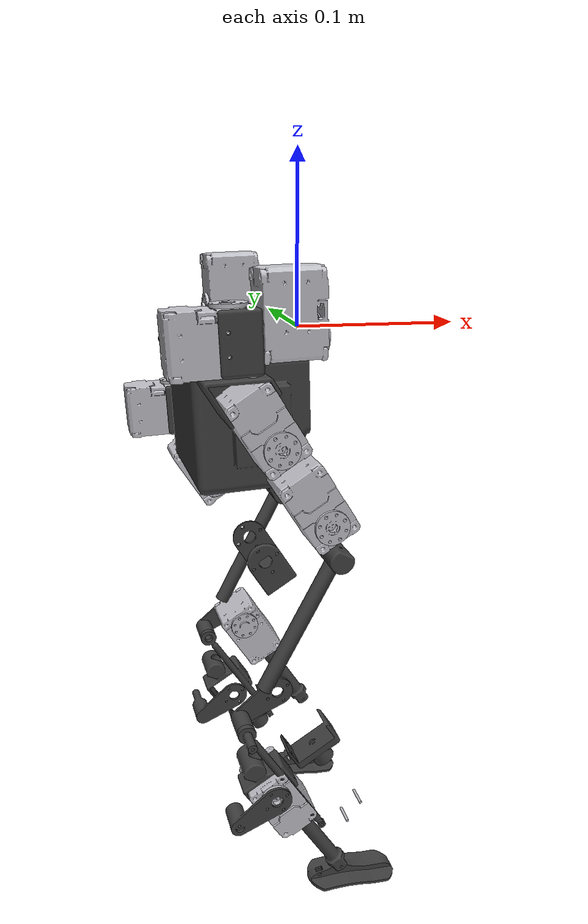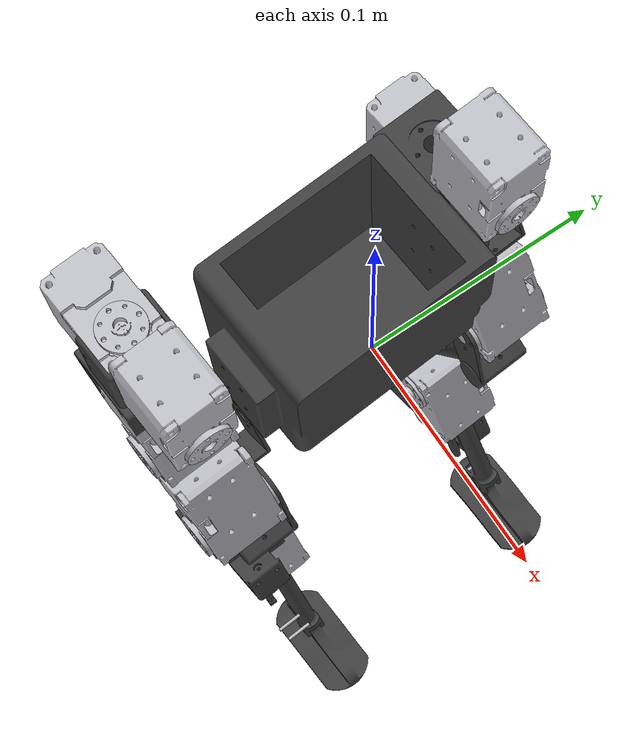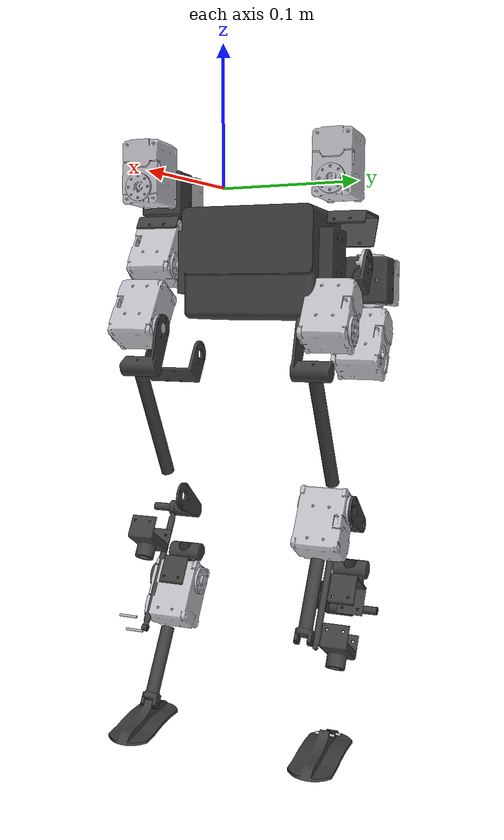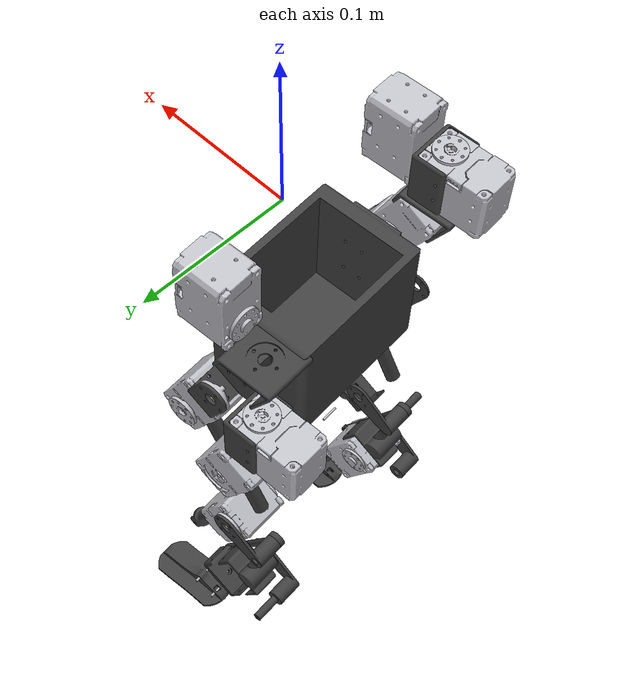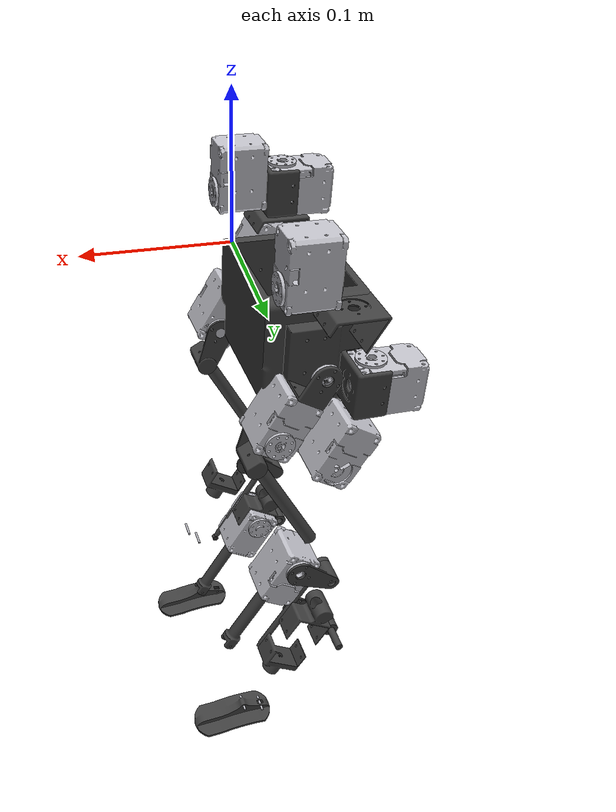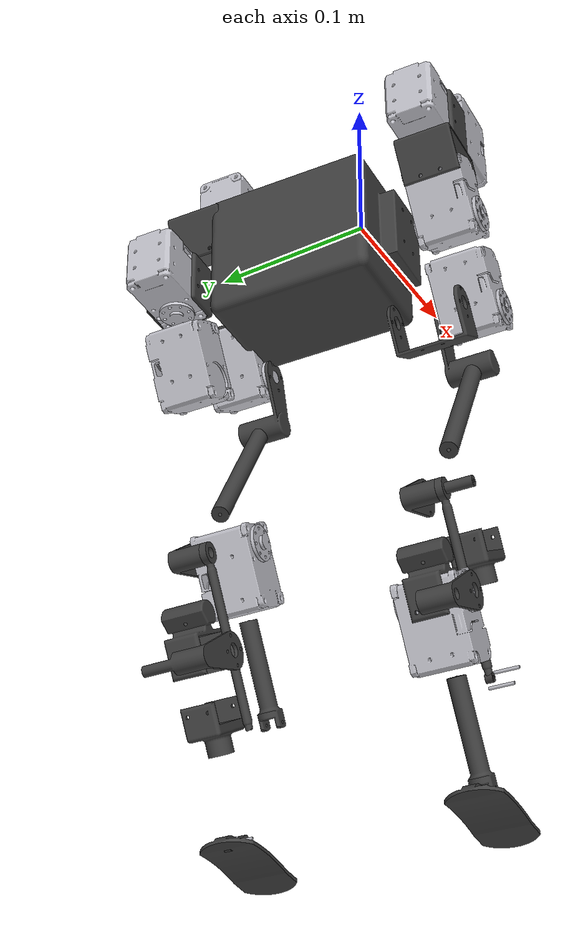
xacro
<?xml version="1.0" ?>
<robot name="mikkelsen2d" xmlns:xacro="http://www.ros.org/wiki/xacro">

<xacro:include filename="$(find mikkelsen2d_description)/urdf/materials.xacro" />
<xacro:include filename="$(find mikkelsen2d_description)/urdf/mikkelsen2d.trans" />
<xacro:include filename="$(find mikkelsen2d_description)/urdf/mikkelsen2d.gazebo" />

<link name="world">
  <inertial>
    <mass value="0"/>
    <origin rpy="0 0 0" xyz="0 0 0"/>
    <inertia ixx="0" ixy="0" ixz="0" iyy="0" iyz="0" izz="0"/>
  </inertial>
</link>
<link name="z_prismatic">
  <inertial>
    <mass value="75"/>
    <inertia ixx="0.2125" ixy="-0.005" ixz="0.0225" iyy="0.205" iyz="0.045" izz="0.0125"/>
    <origin rpy="0 0 0" xyz="0 0 0"/>
  </inertial>
</link>
<joint name="z_to_world" type="prismatic">
  <parent link="world"/>
  <child link="z_prismatic"/>
  <axis xyz="0 0 1"/>
  <limit effort="0.0" lower="1" upper="-1" velocity="1000.0"/>
  <origin rpy="0 0 0" xyz="0 0 0"/>
</joint>
<link name="x_prismatic">
  <inertial>
    <mass value="0.001"/>
    <inertia ixx="0.2125" ixy="-0.005" ixz="0.0225" iyy="0.205" iyz="0.045" izz="0.0125"/>
    <origin rpy="0 0 0" xyz="0 0 0"/>
  </inertial>
</link>
<joint name="x_to_z" type="prismatic">
  <parent link="z_prismatic"/>
  <child link="x_prismatic"/>
  <axis xyz="1 0 0"/>
  <limit effort="0.0" lower="1" upper="-1" velocity="1000.0"/>
  <origin rpy="0 0 0" xyz="0 0 0"/>
</joint>
<joint name="base_to_x" type="continuous">
  <parent link="x_prismatic"/>
  <child link="base_link"/>
  <axis xyz="0 0 1"/>
  <origin rpy="0 0 0" xyz="0 0 0"/>
</joint>

<link name="base_link">
  <inertial>
    <origin xyz="-0.037679135816683924 0.012666740518570965 -0.058008954907279954" rpy="0 0 0"/>
    <mass value="0.42566063723793834"/>
    <inertia ixx="0.000885" iyy="0.000452" izz="0.000847" ixy="3.1e-05" iyz="1e-06" ixz="-7e-06"/>
  </inertial>
  <visual>
    <origin xyz="0 0 0" rpy="0 0 0"/>
    <geometry>
      <mesh filename="package://mikkelsen2d_description/meshes/base_link.stl" scale="0.001 0.001 0.001"/>
    </geometry>
    <material name="pa_11_nylon_hp_1130_eos_p_396_3d_"/>
  </visual>
  <collision>
    <origin xyz="0 0 0" rpy="0 0 0"/>
    <geometry>
      <mesh filename="package://mikkelsen2d_description/meshes/base_link.stl" scale="0.001 0.001 0.001"/>
    </geometry>
  </collision>
</link>

<link name="R_hip_roll_xl_2">
  <inertial>
    <origin xyz="-0.004986268827101341 -0.014720443125513842 -0.015885149307033275" rpy="0 0 0"/>
    <mass value="0.040973661549071165"/>
    <inertia ixx="1e-05" iyy="1.1e-05" izz="6e-06" ixy="-0.0" iyz="-0.0" ixz="0.0"/>
  </inertial>
  <visual>
    <origin xyz="0.023805 0.046388 0.034586" rpy="0 0 0"/>
    <geometry>
      <mesh filename="package://mikkelsen2d_description/meshes/R_hip_roll_xl_2.stl" scale="0.001 0.001 0.001"/>
    </geometry>
    <material name=""/>
  </visual>
  <collision>
    <origin xyz="0.023805 0.046388 0.034586" rpy="0 0 0"/>
    <geometry>
      <mesh filename="package://mikkelsen2d_description/meshes/R_hip_roll_xl_2.stl" scale="0.001 0.001 0.001"/>
    </geometry>
  </collision>
</link>

<link name="R_hip_roll_2">
  <inertial>
    <origin xyz="0.016632013644877517 0.0012074494935598173 0.0006988114411143054" rpy="0 0 0"/>
    <mass value="0.001436423594975712"/>
    <inertia ixx="0.0" iyy="0.0" izz="0.0" ixy="-0.0" iyz="-0.0" ixz="-0.0"/>
  </inertial>
  <visual>
    <origin xyz="0.044871 0.062309 0.0632" rpy="0 0 0"/>
    <geometry>
      <mesh filename="package://mikkelsen2d_description/meshes/R_hip_roll_2.stl" scale="0.001 0.001 0.001"/>
    </geometry>
    <material name=""/>
  </visual>
  <collision>
    <origin xyz="0.044871 0.062309 0.0632" rpy="0 0 0"/>
    <geometry>
      <mesh filename="package://mikkelsen2d_description/meshes/R_hip_roll_2.stl" scale="0.001 0.001 0.001"/>
    </geometry>
  </collision>
</link>

<link name="hip_roll_bracket_1">
  <inertial>
    <origin xyz="-0.005977579788513737 -0.0004317805669656269 -0.00017873596901929467" rpy="0 0 0"/>
    <mass value="0.005303897131480488"/>
    <inertia ixx="1e-06" iyy="1e-06" izz="1e-06" ixy="0.0" iyz="0.0" ixz="0.0"/>
  </inertial>
  <visual>
    <origin xyz="0.046865 0.062453 0.063259" rpy="0 0 0"/>
    <geometry>
      <mesh filename="package://mikkelsen2d_description/meshes/hip_roll_bracket_1.stl" scale="0.001 0.001 0.001"/>
    </geometry>
    <material name="pa_11_nylon_hp_1130_eos_p_396_3d_"/>
  </visual>
  <collision>
    <origin xyz="0.046865 0.062453 0.063259" rpy="0 0 0"/>
    <geometry>
      <mesh filename="package://mikkelsen2d_description/meshes/hip_roll_bracket_1.stl" scale="0.001 0.001 0.001"/>
    </geometry>
  </collision>
</link>

<link name="R_hip_yaw_xl_2">
  <inertial>
    <origin xyz="-0.006998679111861819 -0.014828044606016055 -0.006688075872869702" rpy="0 0 0"/>
    <mass value="0.040973661549071165"/>
    <inertia ixx="6e-06" iyy="1.1e-05" izz="1e-05" ixy="-0.0" iyz="-0.0" ixz="-0.0"/>
  </inertial>
  <visual>
    <origin xyz="0.065267 0.049471 0.057833" rpy="0 0 0"/>
    <geometry>
      <mesh filename="package://mikkelsen2d_description/meshes/R_hip_yaw_xl_2.stl" scale="0.001 0.001 0.001"/>
    </geometry>
    <material name=""/>
  </visual>
  <collision>
    <origin xyz="0.065267 0.049471 0.057833" rpy="0 0 0"/>
    <geometry>
      <mesh filename="package://mikkelsen2d_description/meshes/R_hip_yaw_xl_2.stl" scale="0.001 0.001 0.001"/>
    </geometry>
  </collision>
</link>

<link name="R_hip_yaw_2">
  <inertial>
    <origin xyz="-0.0007020290665685561 2.278650526520154e-05 0.01667620487029814" rpy="0 0 0"/>
    <mass value="0.001436423594975712"/>
    <inertia ixx="0.0" iyy="0.0" izz="0.0" ixy="0.0" iyz="-0.0" ixz="0.0"/>
  </inertial>
  <visual>
    <origin xyz="0.059566 0.063439 0.080646" rpy="0 0 0"/>
    <geometry>
      <mesh filename="package://mikkelsen2d_description/meshes/R_hip_yaw_2.stl" scale="0.001 0.001 0.001"/>
    </geometry>
    <material name=""/>
  </visual>
  <collision>
    <origin xyz="0.059566 0.063439 0.080646" rpy="0 0 0"/>
    <geometry>
      <mesh filename="package://mikkelsen2d_description/meshes/R_hip_yaw_2.stl" scale="0.001 0.001 0.001"/>
    </geometry>
  </collision>
</link>

<link name="hip_yaw_bracket_1">
  <inertial>
    <origin xyz="-0.001846672263714419 -0.00015526908116847427 -0.005510024391643234" rpy="0 0 0"/>
    <mass value="0.0070036931272659"/>
    <inertia ixx="1e-06" iyy="1e-06" izz="2e-06" ixy="-0.0" iyz="-0.0" ixz="-0.0"/>
  </inertial>
  <visual>
    <origin xyz="0.059506 0.063443 0.082645" rpy="0 0 0"/>
    <geometry>
      <mesh filename="package://mikkelsen2d_description/meshes/hip_yaw_bracket_1.stl" scale="0.001 0.001 0.001"/>
    </geometry>
    <material name="pa_11_nylon_hp_1130_eos_p_396_3d_"/>
  </visual>
  <collision>
    <origin xyz="0.059506 0.063443 0.082645" rpy="0 0 0"/>
    <geometry>
      <mesh filename="package://mikkelsen2d_description/meshes/hip_yaw_bracket_1.stl" scale="0.001 0.001 0.001"/>
    </geometry>
  </collision>
</link>

<link name="R_hip_pitch_xl_2">
  <inertial>
    <origin xyz="-0.0034402792651398242 -0.005843576841470306 -0.02087676372452038" rpy="0 0 0"/>
    <mass value="0.040973661549071165"/>
    <inertia ixx="1e-05" iyy="1e-05" izz="8e-06" ixy="-0.0" iyz="0.0" ixz="2e-06"/>
  </inertial>
  <visual>
    <origin xyz="0.040306 0.056066 0.088365" rpy="0 0 0"/>
    <geometry>
      <mesh filename="package://mikkelsen2d_description/meshes/R_hip_pitch_xl_2.stl" scale="0.001 0.001 0.001"/>
    </geometry>
    <material name=""/>
  </visual>
  <collision>
    <origin xyz="0.040306 0.056066 0.088365" rpy="0 0 0"/>
    <geometry>
      <mesh filename="package://mikkelsen2d_description/meshes/R_hip_pitch_xl_2.stl" scale="0.001 0.001 0.001"/>
    </geometry>
  </collision>
</link>

<link name="R_hip_pitch_2">
  <inertial>
    <origin xyz="0.0010986594270186306 -0.016652648300792397 0.0002431266431453527" rpy="0 0 0"/>
    <mass value="0.001436423594975712"/>
    <inertia ixx="0.0" iyy="0.0" izz="0.0" ixy="0.0" iyz="0.0" ixz="-0.0"/>
  </inertial>
  <visual>
    <origin xyz="0.038503 0.045035 0.11972" rpy="0 0 0"/>
    <geometry>
      <mesh filename="package://mikkelsen2d_description/meshes/R_hip_pitch_2.stl" scale="0.001 0.001 0.001"/>
    </geometry>
    <material name=""/>
  </visual>
  <collision>
    <origin xyz="0.038503 0.045035 0.11972" rpy="0 0 0"/>
    <geometry>
      <mesh filename="package://mikkelsen2d_description/meshes/R_hip_pitch_2.stl" scale="0.001 0.001 0.001"/>
    </geometry>
  </collision>
</link>

<link name="hip_pitch_bracket_1">
  <inertial>
    <origin xyz="0.0075391568599490685 -0.018546209284858436 -0.009937387556057525" rpy="0 0 0"/>
    <mass value="0.005694190208798132"/>
    <inertia ixx="2e-06" iyy="1e-06" izz="2e-06" ixy="0.0" iyz="0.0" ixz="0.0"/>
  </inertial>
  <visual>
    <origin xyz="0.038647 0.04304 0.119728" rpy="0 0 0"/>
    <geometry>
      <mesh filename="package://mikkelsen2d_description/meshes/hip_pitch_bracket_1.stl" scale="0.001 0.001 0.001"/>
    </geometry>
    <material name="pa_11_nylon_hp_1130_eos_p_396_3d_"/>
  </visual>
  <collision>
    <origin xyz="0.038647 0.04304 0.119728" rpy="0 0 0"/>
    <geometry>
      <mesh filename="package://mikkelsen2d_description/meshes/hip_pitch_bracket_1.stl" scale="0.001 0.001 0.001"/>
    </geometry>
  </collision>
</link>

<link name="R_knee_xl_2">
  <inertial>
    <origin xyz="0.005665122216174493 -0.00519891645315862 -0.02376072216402675" rpy="0 0 0"/>
    <mass value="0.040973661549071165"/>
    <inertia ixx="1e-05" iyy="1e-05" izz="8e-06" ixy="-0.0" iyz="0.0" ixz="2e-06"/>
  </inertial>
  <visual>
    <origin xyz="0.020568 0.054821 0.132273" rpy="0 0 0"/>
    <geometry>
      <mesh filename="package://mikkelsen2d_description/meshes/R_knee_xl_2.stl" scale="0.001 0.001 0.001"/>
    </geometry>
    <material name=""/>
  </visual>
  <collision>
    <origin xyz="0.020568 0.054821 0.132273" rpy="0 0 0"/>
    <geometry>
      <mesh filename="package://mikkelsen2d_description/meshes/R_knee_xl_2.stl" scale="0.001 0.001 0.001"/>
    </geometry>
  </collision>
</link>

<link name="R_knee_2">
  <inertial>
    <origin xyz="0.0010990609083328055 -0.016652987912480627 0.0002431682036394267" rpy="0 0 0"/>
    <mass value="0.001436423594975712"/>
    <inertia ixx="0.0" iyy="0.0" izz="0.0" ixy="0.0" iyz="0.0" ixz="-0.0"/>
  </inertial>
  <visual>
    <origin xyz="0.00966 0.043145 0.166512" rpy="0 0 0"/>
    <geometry>
      <mesh filename="package://mikkelsen2d_description/meshes/R_knee_2.stl" scale="0.001 0.001 0.001"/>
    </geometry>
    <material name=""/>
  </visual>
  <collision>
    <origin xyz="0.00966 0.043145 0.166512" rpy="0 0 0"/>
    <geometry>
      <mesh filename="package://mikkelsen2d_description/meshes/R_knee_2.stl" scale="0.001 0.001 0.001"/>
    </geometry>
  </collision>
</link>

<link name="knee_r_brecket_1">
  <inertial>
    <origin xyz="0.009880315866068638 -0.007544733859495598 -0.0235916808233316" rpy="0 0 0"/>
    <mass value="0.00786109169007575"/>
    <inertia ixx="1e-06" iyy="1e-06" izz="1e-06" ixy="0.0" iyz="-0.0" ixz="0.0"/>
  </inertial>
  <visual>
    <origin xyz="0.009804 0.04115 0.16652" rpy="0 0 0"/>
    <geometry>
      <mesh filename="package://mikkelsen2d_description/meshes/knee_r_brecket_1.stl" scale="0.001 0.001 0.001"/>
    </geometry>
    <material name="pa_11_nylon_hp_1130_eos_p_396_3d_"/>
  </visual>
  <collision>
    <origin xyz="0.009804 0.04115 0.16652" rpy="0 0 0"/>
    <geometry>
      <mesh filename="package://mikkelsen2d_description/meshes/knee_r_brecket_1.stl" scale="0.001 0.001 0.001"/>
    </geometry>
  </collision>
</link>

<link name="leg_upper_1">
  <inertial>
    <origin xyz="-0.0236265091226358 -0.0018811073277059803 -0.044025157686495536" rpy="0 0 0"/>
    <mass value="0.012719491840295135"/>
    <inertia ixx="8e-06" iyy="1.1e-05" izz="3e-06" ixy="-0.0" iyz="-0.0" ixz="-4e-06"/>
  </inertial>
  <visual>
    <origin xyz="-0.00337 0.052837 0.192104" rpy="0 0 0"/>
    <geometry>
      <mesh filename="package://mikkelsen2d_description/meshes/leg_upper_1.stl" scale="0.001 0.001 0.001"/>
    </geometry>
    <material name="pa_11_nylon_hp_1130_eos_p_396_3d_"/>
  </visual>
  <collision>
    <origin xyz="-0.00337 0.052837 0.192104" rpy="0 0 0"/>
    <geometry>
      <mesh filename="package://mikkelsen2d_description/meshes/leg_upper_1.stl" scale="0.001 0.001 0.001"/>
    </geometry>
  </collision>
</link>

<link name="lower_knee_link_2">
  <inertial>
    <origin xyz="0.0053390673542219255 0.00037288933482495373 -0.003360765157294665" rpy="0 0 0"/>
    <mass value="0.010036812614450108"/>
    <inertia ixx="1e-06" iyy="2e-06" izz="1e-06" ixy="-0.0" iyz="0.0" ixz="0.0"/>
  </inertial>
  <visual>
    <origin xyz="0.043883 0.056599 0.280155" rpy="0 0 0"/>
    <geometry>
      <mesh filename="package://mikkelsen2d_description/meshes/lower_knee_link_2.stl" scale="0.001 0.001 0.001"/>
    </geometry>
    <material name="pa_11_nylon_hp_1130_eos_p_396_3d_"/>
  </visual>
  <collision>
    <origin xyz="0.043883 0.056599 0.280155" rpy="0 0 0"/>
    <geometry>
      <mesh filename="package://mikkelsen2d_description/meshes/lower_knee_link_2.stl" scale="0.001 0.001 0.001"/>
    </geometry>
  </collision>
</link>

<link name="R_ankle_xl_2">
  <inertial>
    <origin xyz="0.0023787863497140467 -0.14124852441426808 -0.013927891020301064" rpy="0 0 0"/>
    <mass value="0.040973661549071165"/>
    <inertia ixx="1e-05" iyy="1e-05" izz="8e-06" ixy="-0.0" iyz="0.0" ixz="2e-06"/>
  </inertial>
  <visual>
    <origin xyz="0.026284 -0.086403 0.292492" rpy="0 0 0"/>
    <geometry>
      <mesh filename="package://mikkelsen2d_description/meshes/R_ankle_xl_2.stl" scale="0.001 0.001 0.001"/>
    </geometry>
    <material name=""/>
  </visual>
  <collision>
    <origin xyz="0.026284 -0.086403 0.292492" rpy="0 0 0"/>
    <geometry>
      <mesh filename="package://mikkelsen2d_description/meshes/R_ankle_xl_2.stl" scale="0.001 0.001 0.001"/>
    </geometry>
  </collision>
</link>

<link name="R_ankle_2">
  <inertial>
    <origin xyz="0.0013006383168733017 -0.016639995225795144 -0.00010822058159531966" rpy="0 0 0"/>
    <mass value="0.001436423594975712"/>
    <inertia ixx="0.0" iyy="0.0" izz="0.0" ixy="0.0" iyz="-0.0" ixz="0.0"/>
  </inertial>
  <visual>
    <origin xyz="0.03152 0.038813 0.296075" rpy="0 0 0"/>
    <geometry>
      <mesh filename="package://mikkelsen2d_description/meshes/R_ankle_2.stl" scale="0.001 0.001 0.001"/>
    </geometry>
    <material name=""/>
  </visual>
  <collision>
    <origin xyz="0.03152 0.038813 0.296075" rpy="0 0 0"/>
    <geometry>
      <mesh filename="package://mikkelsen2d_description/meshes/R_ankle_2.stl" scale="0.001 0.001 0.001"/>
    </geometry>
  </collision>
</link>

<link name="ankle_link_1_2">
  <inertial>
    <origin xyz="-0.01962001103280569 -0.009168861831198263 -0.012464641305166724" rpy="0 0 0"/>
    <mass value="0.006084906833817184"/>
    <inertia ixx="1e-06" iyy="1e-06" izz="1e-06" ixy="-0.0" iyz="-0.0" ixz="-0.0"/>
  </inertial>
  <visual>
    <origin xyz="0.031664 0.036818 0.296083" rpy="0 0 0"/>
    <geometry>
      <mesh filename="package://mikkelsen2d_description/meshes/ankle_link_1_2.stl" scale="0.001 0.001 0.001"/>
    </geometry>
    <material name="pa_11_nylon_hp_1130_eos_p_396_3d_"/>
  </visual>
  <collision>
    <origin xyz="0.031664 0.036818 0.296083" rpy="0 0 0"/>
    <geometry>
      <mesh filename="package://mikkelsen2d_description/meshes/ankle_link_1_2.stl" scale="0.001 0.001 0.001"/>
    </geometry>
  </collision>
</link>

<link name="ankle_link_2_2">
  <inertial>
    <origin xyz="-0.018515664582423236 0.0026780261680551254 -0.011305066027976263" rpy="0 0 0"/>
    <mass value="0.004445165114646534"/>
    <inertia ixx="0.0" iyy="1e-06" izz="1e-06" ixy="0.0" iyz="0.0" ixz="-0.0"/>
  </inertial>
  <visual>
    <origin xyz="0.028932 0.07472 0.29593" rpy="0 0 0"/>
    <geometry>
      <mesh filename="package://mikkelsen2d_description/meshes/ankle_link_2_2.stl" scale="0.001 0.001 0.001"/>
    </geometry>
    <material name="pa_11_nylon_hp_1130_eos_p_396_3d_"/>
  </visual>
  <collision>
    <origin xyz="0.028932 0.07472 0.29593" rpy="0 0 0"/>
    <geometry>
      <mesh filename="package://mikkelsen2d_description/meshes/ankle_link_2_2.stl" scale="0.001 0.001 0.001"/>
    </geometry>
  </collision>
</link>

<link name="R_bionic_biped_robot_ankle_bar_1">
  <inertial>
    <origin xyz="0.0372744305641953 -0.13529755106127062 -0.03135385985193945" rpy="0 0 0"/>
    <mass value="0.003337002701996774"/>
    <inertia ixx="2e-06" iyy="3e-06" izz="1e-06" ixy="-0.0" iyz="0.0" ixz="1e-06"/>
  </inertial>
  <visual>
    <origin xyz="0.065636 -0.079475 0.312328" rpy="0 0 0"/>
    <geometry>
      <mesh filename="package://mikkelsen2d_description/meshes/R_bionic_biped_robot_ankle_bar_1.stl" scale="0.001 0.001 0.001"/>
    </geometry>
    <material name="pa_11_nylon_hp_1130_eos_p_396_3d_"/>
  </visual>
  <collision>
    <origin xyz="0.065636 -0.079475 0.312328" rpy="0 0 0"/>
    <geometry>
      <mesh filename="package://mikkelsen2d_description/meshes/R_bionic_biped_robot_ankle_bar_1.stl" scale="0.001 0.001 0.001"/>
    </geometry>
  </collision>
</link>

<link name="R_ankle_bar_parts_1">
  <inertial>
    <origin xyz="0.00014366062701038056 -0.0019944275139060913 7.819823202137588e-06" rpy="0 0 0"/>
    <mass value="0.0001072728227494817"/>
    <inertia ixx="0.0" iyy="0.0" izz="0.0" ixy="-0.0" iyz="-0.0" ixz="0.0"/>
  </inertial>
  <visual>
    <origin xyz="-0.007408 0.051407 0.38553" rpy="0 0 0"/>
    <geometry>
      <mesh filename="package://mikkelsen2d_description/meshes/R_ankle_bar_parts_1.stl" scale="0.001 0.001 0.001"/>
    </geometry>
    <material name="_"/>
  </visual>
  <collision>
    <origin xyz="-0.007408 0.051407 0.38553" rpy="0 0 0"/>
    <geometry>
      <mesh filename="package://mikkelsen2d_description/meshes/R_ankle_bar_parts_1.stl" scale="0.001 0.001 0.001"/>
    </geometry>
  </collision>
</link>

<link name="lower_link_1">
  <inertial>
    <origin xyz="-0.006464663734562279 -0.006541979758505921 -0.015891229452998867" rpy="0 0 0"/>
    <mass value="0.008544769707383056"/>
    <inertia ixx="1e-06" iyy="1e-06" izz="1e-06" ixy="-0.0" iyz="-0.0" ixz="-0.0"/>
  </inertial>
  <visual>
    <origin xyz="0.003956 0.047921 0.312363" rpy="0 0 0"/>
    <geometry>
      <mesh filename="package://mikkelsen2d_description/meshes/lower_link_1.stl" scale="0.001 0.001 0.001"/>
    </geometry>
    <material name="pa_11_nylon_hp_1130_eos_p_396_3d_"/>
  </visual>
  <collision>
    <origin xyz="0.003956 0.047921 0.312363" rpy="0 0 0"/>
    <geometry>
      <mesh filename="package://mikkelsen2d_description/meshes/lower_link_1.stl" scale="0.001 0.001 0.001"/>
    </geometry>
  </collision>
</link>

<link name="leg_lower_2">
  <inertial>
    <origin xyz="0.016577983186343064 0.0010932869739602863 -0.024991954419130824" rpy="0 0 0"/>
    <mass value="0.007702697584770665"/>
    <inertia ixx="2e-06" iyy="2e-06" izz="1e-06" ixy="-0.0" iyz="0.0" ixz="1e-06"/>
  </inertial>
  <visual>
    <origin xyz="0.009717 0.054388 0.329399" rpy="0 0 0"/>
    <geometry>
      <mesh filename="package://mikkelsen2d_description/meshes/leg_lower_2.stl" scale="0.001 0.001 0.001"/>
    </geometry>
    <material name="pa_11_nylon_hp_1130_eos_p_396_3d_"/>
  </visual>
  <collision>
    <origin xyz="0.009717 0.054388 0.329399" rpy="0 0 0"/>
    <geometry>
      <mesh filename="package://mikkelsen2d_description/meshes/leg_lower_2.stl" scale="0.001 0.001 0.001"/>
    </geometry>
  </collision>
</link>

<link name="shaft_1">
  <inertial>
    <origin xyz="0.011021898892355907 -0.14106983689795666 0.0010968431772507836" rpy="0 0 0"/>
    <mass value="5.79273242847201e-05"/>
    <inertia ixx="0.0" iyy="0.0" izz="0.0" ixy="0.0" iyz="0.0" ixz="-0.0"/>
  </inertial>
  <visual>
    <origin xyz="-0.010002 -0.088703 0.378464" rpy="0 0 0"/>
    <geometry>
      <mesh filename="package://mikkelsen2d_description/meshes/shaft_1.stl" scale="0.001 0.001 0.001"/>
    </geometry>
    <material name=""/>
  </visual>
  <collision>
    <origin xyz="-0.010002 -0.088703 0.378464" rpy="0 0 0"/>
    <geometry>
      <mesh filename="package://mikkelsen2d_description/meshes/shaft_1.stl" scale="0.001 0.001 0.001"/>
    </geometry>
  </collision>
</link>

<link name="foot_1">
  <inertial>
    <origin xyz="0.009247631945305756 -0.006387365319854822 -0.00883166378665401" rpy="0 0 0"/>
    <mass value="0.009360295877442892"/>
    <inertia ixx="1e-06" iyy="3e-06" izz="3e-06" ixy="-0.0" iyz="0.0" ixz="0.0"/>
  </inertial>
  <visual>
    <origin xyz="-0.020521 0.045385 0.377395" rpy="0 0 0"/>
    <geometry>
      <mesh filename="package://mikkelsen2d_description/meshes/foot_1.stl" scale="0.001 0.001 0.001"/>
    </geometry>
    <material name="pa_11_nylon_hp_1130_eos_p_396_3d_"/>
  </visual>
  <collision>
    <origin xyz="-0.020521 0.045385 0.377395" rpy="0 0 0"/>
    <geometry>
      <mesh filename="package://mikkelsen2d_description/meshes/foot_1.stl" scale="0.001 0.001 0.001"/>
    </geometry>
  </collision>
</link>

<link name="L_hip_roll_xl_2">
  <inertial>
    <origin xyz="-0.007035658746133058 0.013705057031099574 -0.016000767229874098" rpy="0 0 0"/>
    <mass value="0.040973661549071165"/>
    <inertia ixx="1e-05" iyy="1.1e-05" izz="6e-06" ixy="-0.0" iyz="-0.0" ixz="0.0"/>
  </inertial>
  <visual>
    <origin xyz="0.032432 -0.073301 0.03507" rpy="0 0 0"/>
    <geometry>
      <mesh filename="package://mikkelsen2d_description/meshes/L_hip_roll_xl_2.stl" scale="0.001 0.001 0.001"/>
    </geometry>
    <material name=""/>
  </visual>
  <collision>
    <origin xyz="0.032432 -0.073301 0.03507" rpy="0 0 0"/>
    <geometry>
      <mesh filename="package://mikkelsen2d_description/meshes/L_hip_roll_xl_2.stl" scale="0.001 0.001 0.001"/>
    </geometry>
  </collision>
</link>

<link name="L_hip_roll_2">
  <inertial>
    <origin xyz="0.016632623725845765 0.001207949650173304 0.0006991935182734527" rpy="0 0 0"/>
    <mass value="0.001436423594975712"/>
    <inertia ixx="0.0" iyy="0.0" izz="0.0" ixy="-0.0" iyz="-0.0" ixz="-0.0"/>
  </inertial>
  <visual>
    <origin xyz="0.055548 -0.085805 0.0638" rpy="0 0 0"/>
    <geometry>
      <mesh filename="package://mikkelsen2d_description/meshes/L_hip_roll_2.stl" scale="0.001 0.001 0.001"/>
    </geometry>
    <material name=""/>
  </visual>
  <collision>
    <origin xyz="0.055548 -0.085805 0.0638" rpy="0 0 0"/>
    <geometry>
      <mesh filename="package://mikkelsen2d_description/meshes/L_hip_roll_2.stl" scale="0.001 0.001 0.001"/>
    </geometry>
  </collision>
</link>

<link name="hip_roll_bracket_2">
  <inertial>
    <origin xyz="-0.005976969707545278 -0.0004312804103520085 -0.00017835389186021677" rpy="0 0 0"/>
    <mass value="0.005303897131480488"/>
    <inertia ixx="1e-06" iyy="1e-06" izz="1e-06" ixy="0.0" iyz="0.0" ixz="0.0"/>
  </inertial>
  <visual>
    <origin xyz="0.057542 -0.085661 0.063859" rpy="0 0 0"/>
    <geometry>
      <mesh filename="package://mikkelsen2d_description/meshes/hip_roll_bracket_2.stl" scale="0.001 0.001 0.001"/>
    </geometry>
    <material name="pa_11_nylon_hp_1130_eos_p_396_3d_"/>
  </visual>
  <collision>
    <origin xyz="0.057542 -0.085661 0.063859" rpy="0 0 0"/>
    <geometry>
      <mesh filename="package://mikkelsen2d_description/meshes/hip_roll_bracket_2.stl" scale="0.001 0.001 0.001"/>
    </geometry>
  </collision>
</link>

<link name="L_hip_yow_xl_2">
  <inertial>
    <origin xyz="-0.019724069030893326 0.16171245555059727 -0.007402693795710839" rpy="0 0 0"/>
    <mass value="0.040973661549071165"/>
    <inertia ixx="6e-06" iyy="1.1e-05" izz="1e-05" ixy="-0.0" iyz="-0.0" ixz="-0.0"/>
  </inertial>
  <visual>
    <origin xyz="0.063218 0.077897 0.057718" rpy="0 0 0"/>
    <geometry>
      <mesh filename="package://mikkelsen2d_description/meshes/L_hip_yow_xl_2.stl" scale="0.001 0.001 0.001"/>
    </geometry>
    <material name=""/>
  </visual>
  <collision>
    <origin xyz="0.063218 0.077897 0.057718" rpy="0 0 0"/>
    <geometry>
      <mesh filename="package://mikkelsen2d_description/meshes/L_hip_yow_xl_2.stl" scale="0.001 0.001 0.001"/>
    </geometry>
  </collision>
</link>

<link name="L_hip_yow_2">
  <inertial>
    <origin xyz="-0.0007024189855999036 2.328666187906281e-05 0.016675586947457022" rpy="0 0 0"/>
    <mass value="0.001436423594975712"/>
    <inertia ixx="0.0" iyy="0.0" izz="0.0" ixy="0.0" iyz="-0.0" ixz="0.0"/>
  </inertial>
  <visual>
    <origin xyz="0.070242 -0.084675 0.081245" rpy="0 0 0"/>
    <geometry>
      <mesh filename="package://mikkelsen2d_description/meshes/L_hip_yow_2.stl" scale="0.001 0.001 0.001"/>
    </geometry>
    <material name=""/>
  </visual>
  <collision>
    <origin xyz="0.070242 -0.084675 0.081245" rpy="0 0 0"/>
    <geometry>
      <mesh filename="package://mikkelsen2d_description/meshes/L_hip_yow_2.stl" scale="0.001 0.001 0.001"/>
    </geometry>
  </collision>
</link>

<link name="hip_yaw_bracket_2">
  <inertial>
    <origin xyz="-0.0018470621827454958 -0.00015576892455435032 -0.0055096423144844475" rpy="0 0 0"/>
    <mass value="0.0070036931272659"/>
    <inertia ixx="1e-06" iyy="1e-06" izz="2e-06" ixy="-0.0" iyz="-0.0" ixz="-0.0"/>
  </inertial>
  <visual>
    <origin xyz="0.070182 -0.084672 0.083245" rpy="0 0 0"/>
    <geometry>
      <mesh filename="package://mikkelsen2d_description/meshes/hip_yaw_bracket_2.stl" scale="0.001 0.001 0.001"/>
    </geometry>
    <material name="pa_11_nylon_hp_1130_eos_p_396_3d_"/>
  </visual>
  <collision>
    <origin xyz="0.070182 -0.084672 0.083245" rpy="0 0 0"/>
    <geometry>
      <mesh filename="package://mikkelsen2d_description/meshes/hip_yaw_bracket_2.stl" scale="0.001 0.001 0.001"/>
    </geometry>
  </collision>
</link>

<link name="L_hip_pitch_xl_2">
  <inertial>
    <origin xyz="-0.014889626704910668 0.15323649091201427 -0.02151001718098544" rpy="0 0 0"/>
    <mass value="0.040973661549071165"/>
    <inertia ixx="1e-05" iyy="1e-05" izz="8e-06" ixy="-0.0" iyz="0.0" ixz="2e-06"/>
  </inertial>
  <visual>
    <origin xyz="0.039444 0.068035 0.088317" rpy="0 0 0"/>
    <geometry>
      <mesh filename="package://mikkelsen2d_description/meshes/L_hip_pitch_xl_2.stl" scale="0.001 0.001 0.001"/>
    </geometry>
    <material name=""/>
  </visual>
  <collision>
    <origin xyz="0.039444 0.068035 0.088317" rpy="0 0 0"/>
    <geometry>
      <mesh filename="package://mikkelsen2d_description/meshes/L_hip_pitch_xl_2.stl" scale="0.001 0.001 0.001"/>
    </geometry>
  </collision>
</link>

<link name="L_hip_pitch_2">
  <inertial>
    <origin xyz="-0.0013111930908787511 0.016638969103919543 0.00010176466340976187" rpy="0 0 0"/>
    <mass value="0.001436423594975712"/>
    <inertia ixx="0.0" iyy="0.0" izz="0.0" ixy="0.0" iyz="-0.0" ixz="0.0"/>
  </inertial>
  <visual>
    <origin xyz="0.046735 -0.069168 0.120182" rpy="0 0 0"/>
    <geometry>
      <mesh filename="package://mikkelsen2d_description/meshes/L_hip_pitch_2.stl" scale="0.001 0.001 0.001"/>
    </geometry>
    <material name=""/>
  </visual>
  <collision>
    <origin xyz="0.046735 -0.069168 0.120182" rpy="0 0 0"/>
    <geometry>
      <mesh filename="package://mikkelsen2d_description/meshes/L_hip_pitch_2.stl" scale="0.001 0.001 0.001"/>
    </geometry>
  </collision>
</link>

<link name="hip_pitch_bracket_2">
  <inertial>
    <origin xyz="0.004806766940918042 0.01935529087175604 -0.01009100547889738" rpy="0 0 0"/>
    <mass value="0.005694190208798132"/>
    <inertia ixx="2e-06" iyy="1e-06" izz="2e-06" ixy="0.0" iyz="0.0" ixz="0.0"/>
  </inertial>
  <visual>
    <origin xyz="0.046591 -0.067173 0.120174" rpy="0 0 0"/>
    <geometry>
      <mesh filename="package://mikkelsen2d_description/meshes/hip_pitch_bracket_2.stl" scale="0.001 0.001 0.001"/>
    </geometry>
    <material name="pa_11_nylon_hp_1130_eos_p_396_3d_"/>
  </visual>
  <collision>
    <origin xyz="0.046591 -0.067173 0.120174" rpy="0 0 0"/>
    <geometry>
      <mesh filename="package://mikkelsen2d_description/meshes/hip_pitch_bracket_2.stl" scale="0.001 0.001 0.001"/>
    </geometry>
  </collision>
</link>

<link name="L_knee_xl_2">
  <inertial>
    <origin xyz="-0.0057852252235959314 0.15388115130032537 -0.024393975620490616" rpy="0 0 0"/>
    <mass value="0.040973661549071165"/>
    <inertia ixx="1e-05" iyy="1e-05" izz="8e-06" ixy="-0.0" iyz="0.0" ixz="2e-06"/>
  </inertial>
  <visual>
    <origin xyz="0.019705 0.06679 0.132225" rpy="0 0 0"/>
    <geometry>
      <mesh filename="package://mikkelsen2d_description/meshes/L_knee_xl_2.stl" scale="0.001 0.001 0.001"/>
    </geometry>
    <material name=""/>
  </visual>
  <collision>
    <origin xyz="0.019705 0.06679 0.132225" rpy="0 0 0"/>
    <geometry>
      <mesh filename="package://mikkelsen2d_description/meshes/L_knee_xl_2.stl" scale="0.001 0.001 0.001"/>
    </geometry>
  </collision>
</link>

<link name="L_knee_2">
  <inertial>
    <origin xyz="-0.001310791609564127 0.01663862949223087 0.00010180622390471017" rpy="0 0 0"/>
    <mass value="0.001436423594975712"/>
    <inertia ixx="0.0" iyy="0.0" izz="0.0" ixy="0.0" iyz="-0.0" ixz="0.0"/>
  </inertial>
  <visual>
    <origin xyz="0.017892 -0.071058 0.166974" rpy="0 0 0"/>
    <geometry>
      <mesh filename="package://mikkelsen2d_description/meshes/L_knee_2.stl" scale="0.001 0.001 0.001"/>
    </geometry>
    <material name=""/>
  </visual>
  <collision>
    <origin xyz="0.017892 -0.071058 0.166974" rpy="0 0 0"/>
    <geometry>
      <mesh filename="package://mikkelsen2d_description/meshes/L_knee_2.stl" scale="0.001 0.001 0.001"/>
    </geometry>
  </collision>
</link>

<link name="knee_l_bracket_1">
  <inertial>
    <origin xyz="0.008709497182516516 0.008692950647949602 -0.02365759624485586" rpy="0 0 0"/>
    <mass value="0.007861091690075749"/>
    <inertia ixx="1e-06" iyy="1e-06" izz="1e-06" ixy="-0.0" iyz="0.0" ixz="0.0"/>
  </inertial>
  <visual>
    <origin xyz="0.017748 -0.069063 0.166966" rpy="0 0 0"/>
    <geometry>
      <mesh filename="package://mikkelsen2d_description/meshes/knee_l_bracket_1.stl" scale="0.001 0.001 0.001"/>
    </geometry>
    <material name="pa_11_nylon_hp_1130_eos_p_396_3d_"/>
  </visual>
  <collision>
    <origin xyz="0.017748 -0.069063 0.166966" rpy="0 0 0"/>
    <geometry>
      <mesh filename="package://mikkelsen2d_description/meshes/knee_l_bracket_1.stl" scale="0.001 0.001 0.001"/>
    </geometry>
  </collision>
</link>

<link name="leg_upper_2">
  <inertial>
    <origin xyz="-0.0236272655807404 -0.0018808597100555963 -0.044025283804643156" rpy="0 0 0"/>
    <mass value="0.012719491840295135"/>
    <inertia ixx="8e-06" iyy="1.1e-05" izz="3e-06" ixy="-0.0" iyz="-0.0" ixz="-4e-06"/>
  </inertial>
  <visual>
    <origin xyz="0.006371 -0.082311 0.192651" rpy="0 0 0"/>
    <geometry>
      <mesh filename="package://mikkelsen2d_description/meshes/leg_upper_2.stl" scale="0.001 0.001 0.001"/>
    </geometry>
    <material name="pa_11_nylon_hp_1130_eos_p_396_3d_"/>
  </visual>
  <collision>
    <origin xyz="0.006371 -0.082311 0.192651" rpy="0 0 0"/>
    <geometry>
      <mesh filename="package://mikkelsen2d_description/meshes/leg_upper_2.stl" scale="0.001 0.001 0.001"/>
    </geometry>
  </collision>
</link>

<link name="lower_knee_link_1">
  <inertial>
    <origin xyz="-0.004402689103882022 0.13552113695247434 -0.003907891275441444" rpy="0 0 0"/>
    <mass value="0.010036812614450108"/>
    <inertia ixx="1e-06" iyy="2e-06" izz="1e-06" ixy="-0.0" iyz="0.0" ixz="0.0"/>
  </inertial>
  <visual>
    <origin xyz="0.043883 0.056599 0.280155" rpy="0 0 0"/>
    <geometry>
      <mesh filename="package://mikkelsen2d_description/meshes/lower_knee_link_1.stl" scale="0.001 0.001 0.001"/>
    </geometry>
    <material name="pa_11_nylon_hp_1130_eos_p_396_3d_"/>
  </visual>
  <collision>
    <origin xyz="0.043883 0.056599 0.280155" rpy="0 0 0"/>
    <geometry>
      <mesh filename="package://mikkelsen2d_description/meshes/lower_knee_link_1.stl" scale="0.001 0.001 0.001"/>
    </geometry>
  </collision>
</link>

<link name="L_ankle_xl_2">
  <inertial>
    <origin xyz="-0.008170174994778033 0.0048628108902959155 -0.014529247093322983" rpy="0 0 0"/>
    <mass value="0.040973661549071165"/>
    <inertia ixx="1e-05" iyy="1e-05" izz="8e-06" ixy="-0.0" iyz="0.0" ixz="2e-06"/>
  </inertial>
  <visual>
    <origin xyz="0.025421 -0.074434 0.292444" rpy="0 0 0"/>
    <geometry>
      <mesh filename="package://mikkelsen2d_description/meshes/L_ankle_xl_2.stl" scale="0.001 0.001 0.001"/>
    </geometry>
    <material name=""/>
  </visual>
  <collision>
    <origin xyz="0.025421 -0.074434 0.292444" rpy="0 0 0"/>
    <geometry>
      <mesh filename="package://mikkelsen2d_description/meshes/L_ankle_xl_2.stl" scale="0.001 0.001 0.001"/>
    </geometry>
  </collision>
</link>

<link name="L_ankle_2">
  <inertial>
    <origin xyz="-0.0010883992681275378 0.016653874969239903 -0.00023658974408985456" rpy="0 0 0"/>
    <mass value="0.001436423594975712"/>
    <inertia ixx="0.0" iyy="0.0" izz="0.0" ixy="0.0" iyz="0.0" ixz="-0.0"/>
  </inertial>
  <visual>
    <origin xyz="0.038818 -0.062423 0.296485" rpy="0 0 0"/>
    <geometry>
      <mesh filename="package://mikkelsen2d_description/meshes/L_ankle_2.stl" scale="0.001 0.001 0.001"/>
    </geometry>
    <material name=""/>
  </visual>
  <collision>
    <origin xyz="0.038818 -0.062423 0.296485" rpy="0 0 0"/>
    <geometry>
      <mesh filename="package://mikkelsen2d_description/meshes/L_ankle_2.stl" scale="0.001 0.001 0.001"/>
    </geometry>
  </collision>
</link>

<link name="ankle_link_2_1">
  <inertial>
    <origin xyz="-0.017933407461730076 -0.005396774732084456 -0.011272941800434477" rpy="0 0 0"/>
    <mass value="0.004445165114646534"/>
    <inertia ixx="0.0" iyy="1e-06" izz="1e-06" ixy="-0.0" iyz="-0.0" ixz="-0.0"/>
  </inertial>
  <visual>
    <origin xyz="0.041406 -0.09833 0.29663" rpy="0 0 0"/>
    <geometry>
      <mesh filename="package://mikkelsen2d_description/meshes/ankle_link_2_1.stl" scale="0.001 0.001 0.001"/>
    </geometry>
    <material name="pa_11_nylon_hp_1130_eos_p_396_3d_"/>
  </visual>
  <collision>
    <origin xyz="0.041406 -0.09833 0.29663" rpy="0 0 0"/>
    <geometry>
      <mesh filename="package://mikkelsen2d_description/meshes/ankle_link_2_1.stl" scale="0.001 0.001 0.001"/>
    </geometry>
  </collision>
</link>

<link name="ankle_link_1_1">
  <inertial>
    <origin xyz="-0.020724599914864222 0.006159546314823412 -0.012526380836080875" rpy="0 0 0"/>
    <mass value="0.006084906833817184"/>
    <inertia ixx="1e-06" iyy="1e-06" izz="1e-06" ixy="0.0" iyz="0.0" ixz="-0.0"/>
  </inertial>
  <visual>
    <origin xyz="0.038674 -0.060428 0.296477" rpy="0 0 0"/>
    <geometry>
      <mesh filename="package://mikkelsen2d_description/meshes/ankle_link_1_1.stl" scale="0.001 0.001 0.001"/>
    </geometry>
    <material name="pa_11_nylon_hp_1130_eos_p_396_3d_"/>
  </visual>
  <collision>
    <origin xyz="0.038674 -0.060428 0.296477" rpy="0 0 0"/>
    <geometry>
      <mesh filename="package://mikkelsen2d_description/meshes/ankle_link_1_1.stl" scale="0.001 0.001 0.001"/>
    </geometry>
  </collision>
</link>

<link name="L_bionic_biped_robot_ankle_bar_v2_1">
  <inertial>
    <origin xyz="0.026973185994146963 -0.00019155226833608707 -0.03237520514495967" rpy="0 0 0"/>
    <mass value="0.0020522771844998615"/>
    <inertia ixx="1e-06" iyy="2e-06" izz="1e-06" ixy="-0.0" iyz="0.0" ixz="1e-06"/>
  </inertial>
  <visual>
    <origin xyz="0.065636 -0.079475 0.312328" rpy="0 0 0"/>
    <geometry>
      <mesh filename="package://mikkelsen2d_description/meshes/L_bionic_biped_robot_ankle_bar_v2_1.stl" scale="0.001 0.001 0.001"/>
    </geometry>
    <material name="pa_11_nylon_hp_1130_eos_p_396_3d_"/>
  </visual>
  <collision>
    <origin xyz="0.065636 -0.079475 0.312328" rpy="0 0 0"/>
    <geometry>
      <mesh filename="package://mikkelsen2d_description/meshes/L_bionic_biped_robot_ankle_bar_v2_1.stl" scale="0.001 0.001 0.001"/>
    </geometry>
  </collision>
</link>

<link name="lower_link_2">
  <inertial>
    <origin xyz="-0.007327420192664854 0.0054272678591428675 -0.015939355571145786" rpy="0 0 0"/>
    <mass value="0.008544769707383056"/>
    <inertia ixx="1e-06" iyy="1e-06" izz="1e-06" ixy="-0.0" iyz="-0.0" ixz="-0.0"/>
  </inertial>
  <visual>
    <origin xyz="0.012835 -0.075258 0.312862" rpy="0 0 0"/>
    <geometry>
      <mesh filename="package://mikkelsen2d_description/meshes/lower_link_2.stl" scale="0.001 0.001 0.001"/>
    </geometry>
    <material name="pa_11_nylon_hp_1130_eos_p_396_3d_"/>
  </visual>
  <collision>
    <origin xyz="0.012835 -0.075258 0.312862" rpy="0 0 0"/>
    <geometry>
      <mesh filename="package://mikkelsen2d_description/meshes/lower_link_2.stl" scale="0.001 0.001 0.001"/>
    </geometry>
  </collision>
</link>

<link name="leg_lower_1">
  <inertial>
    <origin xyz="0.00683581112231717 0.13624225155348746 -0.025538614757582068" rpy="0 0 0"/>
    <mass value="0.007702697584770665"/>
    <inertia ixx="2e-06" iyy="2e-06" izz="1e-06" ixy="-0.0" iyz="0.0" ixz="1e-06"/>
  </inertial>
  <visual>
    <origin xyz="0.010565 0.054452 0.329925" rpy="0 0 0"/>
    <geometry>
      <mesh filename="package://mikkelsen2d_description/meshes/leg_lower_1.stl" scale="0.001 0.001 0.001"/>
    </geometry>
    <material name="pa_11_nylon_hp_1130_eos_p_396_3d_"/>
  </visual>
  <collision>
    <origin xyz="0.010565 0.054452 0.329925" rpy="0 0 0"/>
    <geometry>
      <mesh filename="package://mikkelsen2d_description/meshes/leg_lower_1.stl" scale="0.001 0.001 0.001"/>
    </geometry>
  </collision>
</link>

<link name="shaft_4">
  <inertial>
    <origin xyz="-0.0012796887777527313 0.005920844643437256 -0.000549351381604779" rpy="0 0 0"/>
    <mass value="5.79273242847201e-05"/>
    <inertia ixx="0.0" iyy="0.0" izz="0.0" ixy="0.0" iyz="0.0" ixz="-0.0"/>
  </inertial>
  <visual>
    <origin xyz="-0.010865 -0.076734 0.378416" rpy="0 0 0"/>
    <geometry>
      <mesh filename="package://mikkelsen2d_description/meshes/shaft_4.stl" scale="0.001 0.001 0.001"/>
    </geometry>
    <material name=""/>
  </visual>
  <collision>
    <origin xyz="-0.010865 -0.076734 0.378416" rpy="0 0 0"/>
    <geometry>
      <mesh filename="package://mikkelsen2d_description/meshes/shaft_4.stl" scale="0.001 0.001 0.001"/>
    </geometry>
  </collision>
</link>

<link name="foot_2">
  <inertial>
    <origin xyz="-0.0031969557246431836 0.14259831622155128 -0.010485858345410604" rpy="0 0 0"/>
    <mass value="0.009360295877442892"/>
    <inertia ixx="1e-06" iyy="3e-06" izz="3e-06" ixy="-0.0" iyz="0.0" ixz="0.0"/>
  </inertial>
  <visual>
    <origin xyz="-0.021527 0.059349 0.377339" rpy="0 0 0"/>
    <geometry>
      <mesh filename="package://mikkelsen2d_description/meshes/foot_2.stl" scale="0.001 0.001 0.001"/>
    </geometry>
    <material name="pa_11_nylon_hp_1130_eos_p_396_3d_"/>
  </visual>
  <collision>
    <origin xyz="-0.021527 0.059349 0.377339" rpy="0 0 0"/>
    <geometry>
      <mesh filename="package://mikkelsen2d_description/meshes/foot_2.stl" scale="0.001 0.001 0.001"/>
    </geometry>
  </collision>
</link>

<link name="L_ankle_bar_parts_v1_1">
  <inertial>
    <origin xyz="-0.00014394221523743225 0.0019945724362831485 -8.321499878949368e-06" rpy="0 0 0"/>
    <mass value="0.0005178915489442998"/>
    <inertia ixx="0.0" iyy="0.0" izz="0.0" ixy="-0.0" iyz="-0.0" ixz="0.0"/>
  </inertial>
  <visual>
    <origin xyz="0.003339 -0.079651 0.387157" rpy="0 0 0"/>
    <geometry>
      <mesh filename="package://mikkelsen2d_description/meshes/L_ankle_bar_parts_v1_1.stl" scale="0.001 0.001 0.001"/>
    </geometry>
    <material name="pa_11_nylon_hp_1130_eos_p_396_3d_"/>
  </visual>
  <collision>
    <origin xyz="0.003339 -0.079651 0.387157" rpy="0 0 0"/>
    <geometry>
      <mesh filename="package://mikkelsen2d_description/meshes/L_ankle_bar_parts_v1_1.stl" scale="0.001 0.001 0.001"/>
    </geometry>
  </collision>
</link>

<link name="shaft_3">
  <inertial>
    <origin xyz="-0.011438466576369044 0.13502171160794899 -0.0015986852578384614" rpy="0 0 0"/>
    <mass value="5.79273242847201e-05"/>
    <inertia ixx="0.0" iyy="0.0" izz="0.0" ixy="0.0" iyz="0.0" ixz="-0.0"/>
  </inertial>
  <visual>
    <origin xyz="-0.005881 0.053482 0.383199" rpy="0 0 0"/>
    <geometry>
      <mesh filename="package://mikkelsen2d_description/meshes/shaft_3.stl" scale="0.001 0.001 0.001"/>
    </geometry>
    <material name=""/>
  </visual>
  <collision>
    <origin xyz="-0.005881 0.053482 0.383199" rpy="0 0 0"/>
    <geometry>
      <mesh filename="package://mikkelsen2d_description/meshes/shaft_3.stl" scale="0.001 0.001 0.001"/>
    </geometry>
  </collision>
</link>

<link name="shaft_5">
  <inertial>
    <origin xyz="1.210936678560856e-07 3.00665498886854e-08 -4.906991806774563e-07" rpy="0 0 0"/>
    <mass value="5.79273242847201e-05"/>
    <inertia ixx="0.0" iyy="0.0" izz="0.0" ixy="0.0" iyz="0.0" ixz="-0.0"/>
  </inertial>
  <visual>
    <origin xyz="-0.005881 0.053482 0.383199" rpy="0 0 0"/>
    <geometry>
      <mesh filename="package://mikkelsen2d_description/meshes/shaft_5.stl" scale="0.001 0.001 0.001"/>
    </geometry>
    <material name=""/>
  </visual>
  <collision>
    <origin xyz="-0.005881 0.053482 0.383199" rpy="0 0 0"/>
    <geometry>
      <mesh filename="package://mikkelsen2d_description/meshes/shaft_5.stl" scale="0.001 0.001 0.001"/>
    </geometry>
  </collision>
</link>

<joint name="��] 241" type="revolute">
  <origin xyz="-0.005236 -0.125216 -0.003583" rpy="0 0 0"/>
  <parent link="R_ankle_xl_2"/>
  <child link="R_ankle_2"/>
  <axis xyz="0.071895 -0.997404 0.004038"/>
  <limit lower="-0.5236" upper="0.5236" effort="100" velocity="1.0"/>
</joint>

<joint name="��] 285" type="revolute">
  <origin xyz="-0.013397 -0.012011 -0.004041" rpy="0 0 0"/>
  <parent link="L_ankle_xl_2"/>
  <child link="L_ankle_2"/>
  <axis xyz="-0.071895 0.997404 -0.004038"/>
  <limit lower="-0.5236" upper="0.5236" effort="100" velocity="1.0"/>
</joint>

<joint name="��] 244" type="revolute">
  <origin xyz="-0.036704 0.154195 -0.016398" rpy="0 0 0"/>
  <parent link="ankle_link_2_2"/>
  <child link="R_bionic_biped_robot_ankle_bar_1"/>
  <axis xyz="0.071895 -0.997404 0.004038"/>
  <limit lower="-0.5236" upper="0.5236" effort="100" velocity="1.0"/>
</joint>

<joint name="��] 245" type="revolute">
  <origin xyz="0.073044 -0.130882 -0.073202" rpy="0 0 0"/>
  <parent link="R_bionic_biped_robot_ankle_bar_1"/>
  <child link="R_ankle_bar_parts_1"/>
  <axis xyz="-0.071895 0.997404 -0.004038"/>
  <limit lower="-0.5236" upper="0.5236" effort="100" velocity="1.0"/>
</joint>

<joint name="��] 288" type="revolute">
  <origin xyz="-0.02423 -0.018855 -0.015698" rpy="0 0 0"/>
  <parent link="ankle_link_2_1"/>
  <child link="L_bionic_biped_robot_ankle_bar_v2_1"/>
  <axis xyz="-0.071895 0.997404 -0.004038"/>
  <limit lower="-0.5236" upper="0.5236" effort="100" velocity="1.0"/>
</joint>

<joint name="��] 294" type="revolute">
  <origin xyz="0.062297 0.000176 -0.074829" rpy="0 0 0"/>
  <parent link="L_bionic_biped_robot_ankle_bar_v2_1"/>
  <child link="L_ankle_bar_parts_v1_1"/>
  <axis xyz="-0.071895 0.997404 -0.004038"/>
  <limit lower="-0.5236" upper="0.5236" effort="100" velocity="1.0"/>
</joint>

<joint name="��] 249" type="revolute">
  <origin xyz="0.010519 -0.134088 0.001069" rpy="0 0 0"/>
  <parent link="shaft_1"/>
  <child link="foot_1"/>
  <axis xyz="-0.071895 0.997404 -0.004038"/>
  <limit lower="-0.5236" upper="0.5236" effort="100" velocity="1.0"/>
</joint>

<joint name="��] 292" type="revolute">
  <origin xyz="0.010662 -0.136083 0.001077" rpy="0 0 0"/>
  <parent link="shaft_4"/>
  <child link="foot_2"/>
  <axis xyz="-0.071895 0.997404 -0.004038"/>
  <limit lower="-0.5236" upper="0.5236" effort="100" velocity="1.0"/>
</joint>

<joint name="���� 226" type="fixed">
  <origin xyz="-0.023805 -0.046388 -0.034586" rpy="0 0 0"/>
  <parent link="base_link"/>
  <child link="R_hip_roll_xl_2"/>
</joint>

<joint name="���� 227" type="fixed">
  <origin xyz="-0.021066 -0.015921 -0.028614" rpy="0 0 0"/>
  <parent link="R_hip_roll_xl_2"/>
  <child link="R_hip_roll_2"/>
</joint>

<joint name="���� 228" type="fixed">
  <origin xyz="-0.001994 -0.000144 -5.9e-05" rpy="0 0 0"/>
  <parent link="R_hip_roll_2"/>
  <child link="hip_roll_bracket_1"/>
</joint>

<joint name="���� 229" type="fixed">
  <origin xyz="-0.018402 0.012982 0.005426" rpy="0 0 0"/>
  <parent link="hip_roll_bracket_1"/>
  <child link="R_hip_yaw_xl_2"/>
</joint>

<joint name="���� 230" type="fixed">
  <origin xyz="0.005701 -0.013968 -0.022813" rpy="0 0 0"/>
  <parent link="R_hip_yaw_xl_2"/>
  <child link="R_hip_yaw_2"/>
</joint>

<joint name="���� 231" type="fixed">
  <origin xyz="6e-05 -4e-06 -0.001999" rpy="0 0 0"/>
  <parent link="R_hip_yaw_2"/>
  <child link="hip_yaw_bracket_1"/>
</joint>

<joint name="���� 232" type="fixed">
  <origin xyz="0.0192 0.007377 -0.00572" rpy="0 0 0"/>
  <parent link="hip_yaw_bracket_1"/>
  <child link="R_hip_pitch_xl_2"/>
</joint>

<joint name="��] 233" type="continuous">
  <origin xyz="0.001803 0.011031 -0.031355" rpy="0 0 0"/>
  <parent link="R_hip_pitch_xl_2"/>
  <child link="R_hip_pitch_2"/>
  <axis xyz="0.071895 -0.997404 0.004038"/>
</joint>

<joint name="���� 234" type="fixed">
  <origin xyz="-0.000144 0.001995 -8e-06" rpy="0 0 0"/>
  <parent link="R_hip_pitch_2"/>
  <child link="hip_pitch_bracket_1"/>
</joint>

<joint name="���� 235" type="fixed">
  <origin xyz="0.018079 -0.011781 -0.012545" rpy="0 0 0"/>
  <parent link="hip_pitch_bracket_1"/>
  <child link="R_knee_xl_2"/>
</joint>

<joint name="��] 236" type="continuous">
  <origin xyz="0.010908 0.011676 -0.034239" rpy="0 0 0"/>
  <parent link="R_knee_xl_2"/>
  <child link="R_knee_2"/>
  <axis xyz="0.071895 -0.997404 0.004038"/>
</joint>

<joint name="���� 237" type="fixed">
  <origin xyz="-0.000144 0.001995 -8e-06" rpy="0 0 0"/>
  <parent link="R_knee_2"/>
  <child link="knee_r_brecket_1"/>
</joint>

<joint name="���� 238" type="fixed">
  <origin xyz="0.013174 -0.011687 -0.025584" rpy="0 0 0"/>
  <parent link="knee_r_brecket_1"/>
  <child link="leg_upper_1"/>
</joint>

<joint name="���� 239" type="fixed">
  <origin xyz="-0.047253 -0.003762 -0.088051" rpy="0 0 0"/>
  <parent link="leg_upper_1"/>
  <child link="lower_knee_link_2"/>
</joint>

<joint name="���� 240" type="fixed">
  <origin xyz="0.017599 0.143002 -0.012337" rpy="0 0 0"/>
  <parent link="lower_knee_link_2"/>
  <child link="R_ankle_xl_2"/>
</joint>

<joint name="���� 242" type="fixed">
  <origin xyz="-0.000144 0.001995 -8e-06" rpy="0 0 0"/>
  <parent link="R_ankle_2"/>
  <child link="ankle_link_1_2"/>
</joint>

<joint name="���� 243" type="fixed">
  <origin xyz="0.002588 -0.035907 0.000145" rpy="0 0 0"/>
  <parent link="R_ankle_2"/>
  <child link="ankle_link_2_2"/>
</joint>

<joint name="���� 246" type="fixed">
  <origin xyz="0.022328 -0.134324 -0.019871" rpy="0 0 0"/>
  <parent link="R_ankle_xl_2"/>
  <child link="lower_link_1"/>
</joint>

<joint name="���� 247" type="fixed">
  <origin xyz="-0.005761 -0.006467 -0.017036" rpy="0 0 0"/>
  <parent link="lower_link_1"/>
  <child link="leg_lower_2"/>
</joint>

<joint name="���� 248" type="fixed">
  <origin xyz="0.019719 0.143091 -0.049065" rpy="0 0 0"/>
  <parent link="leg_lower_2"/>
  <child link="shaft_1"/>
</joint>

<joint name="���� 270" type="fixed">
  <origin xyz="-0.032432 0.073301 -0.03507" rpy="0 0 0"/>
  <parent link="base_link"/>
  <child link="L_hip_roll_xl_2"/>
</joint>

<joint name="���� 271" type="fixed">
  <origin xyz="-0.023116 0.012504 -0.02873" rpy="0 0 0"/>
  <parent link="L_hip_roll_xl_2"/>
  <child link="L_hip_roll_2"/>
</joint>

<joint name="���� 272" type="fixed">
  <origin xyz="-0.001994 -0.000144 -5.9e-05" rpy="0 0 0"/>
  <parent link="L_hip_roll_2"/>
  <child link="hip_roll_bracket_2"/>
</joint>

<joint name="���� 273" type="fixed">
  <origin xyz="-0.005676 -0.163558 0.006141" rpy="0 0 0"/>
  <parent link="hip_roll_bracket_2"/>
  <child link="L_hip_yow_xl_2"/>
</joint>

<joint name="���� 274" type="fixed">
  <origin xyz="-0.007024 0.162572 -0.023527" rpy="0 0 0"/>
  <parent link="L_hip_yow_xl_2"/>
  <child link="L_hip_yow_2"/>
</joint>

<joint name="���� 275" type="fixed">
  <origin xyz="6e-05 -3e-06 -0.002" rpy="0 0 0"/>
  <parent link="L_hip_yow_2"/>
  <child link="hip_yaw_bracket_2"/>
</joint>

<joint name="���� 276" type="fixed">
  <origin xyz="0.030738 -0.152707 -0.005072" rpy="0 0 0"/>
  <parent link="hip_yaw_bracket_2"/>
  <child link="L_hip_pitch_xl_2"/>
</joint>

<joint name="��] 277" type="continuous">
  <origin xyz="-0.007291 0.137203 -0.031865" rpy="0 0 0"/>
  <parent link="L_hip_pitch_xl_2"/>
  <child link="L_hip_pitch_2"/>
  <axis xyz="-0.071895 0.997404 -0.004038"/>
</joint>

<joint name="���� 278" type="fixed">
  <origin xyz="0.000144 -0.001995 8e-06" rpy="0 0 0"/>
  <parent link="L_hip_pitch_2"/>
  <child link="hip_pitch_bracket_2"/>
</joint>

<joint name="���� 279" type="fixed">
  <origin xyz="0.026886 -0.133963 -0.012051" rpy="0 0 0"/>
  <parent link="hip_pitch_bracket_2"/>
  <child link="L_knee_xl_2"/>
</joint>

<joint name="��] 280" type="continuous">
  <origin xyz="0.001813 0.137848 -0.034749" rpy="0 0 0"/>
  <parent link="L_knee_xl_2"/>
  <child link="L_knee_2"/>
  <axis xyz="-0.071895 0.997404 -0.004038"/>
</joint>

<joint name="���� 281" type="fixed">
  <origin xyz="0.000144 -0.001995 8e-06" rpy="0 0 0"/>
  <parent link="L_knee_2"/>
  <child link="knee_l_bracket_1"/>
</joint>

<joint name="���� 282" type="fixed">
  <origin xyz="0.011377 0.013248 -0.025685" rpy="0 0 0"/>
  <parent link="knee_l_bracket_1"/>
  <child link="leg_upper_2"/>
</joint>

<joint name="���� 283" type="fixed">
  <origin xyz="-0.037512 -0.13891 -0.087504" rpy="0 0 0"/>
  <parent link="leg_upper_2"/>
  <child link="lower_knee_link_1"/>
</joint>

<joint name="���� 284" type="fixed">
  <origin xyz="0.018462 0.131033 -0.012289" rpy="0 0 0"/>
  <parent link="lower_knee_link_1"/>
  <child link="L_ankle_xl_2"/>
</joint>

<joint name="���� 286" type="fixed">
  <origin xyz="-0.002588 0.035907 -0.000145" rpy="0 0 0"/>
  <parent link="L_ankle_2"/>
  <child link="ankle_link_2_1"/>
</joint>

<joint name="���� 287" type="fixed">
  <origin xyz="0.000144 -0.001995 8e-06" rpy="0 0 0"/>
  <parent link="L_ankle_2"/>
  <child link="ankle_link_1_1"/>
</joint>

<joint name="���� 289" type="fixed">
  <origin xyz="0.012586 0.000824 -0.020418" rpy="0 0 0"/>
  <parent link="L_ankle_xl_2"/>
  <child link="lower_link_2"/>
</joint>

<joint name="���� 290" type="fixed">
  <origin xyz="0.00227 -0.12971 -0.017063" rpy="0 0 0"/>
  <parent link="lower_link_2"/>
  <child link="leg_lower_1"/>
</joint>

<joint name="���� 291" type="fixed">
  <origin xyz="0.02143 0.131186 -0.048491" rpy="0 0 0"/>
  <parent link="leg_lower_1"/>
  <child link="shaft_4"/>
</joint>

<joint name="���� 295" type="fixed">
  <origin xyz="-0.015646 0.005867 -0.00586" rpy="0 0 0"/>
  <parent link="foot_2"/>
  <child link="shaft_3"/>
</joint>

<joint name="���� 296" type="fixed">
  <origin xyz="-0.01464 -0.008097 -0.005804" rpy="0 0 0"/>
  <parent link="foot_1"/>
  <child link="shaft_5"/>
</joint>

</robot>
